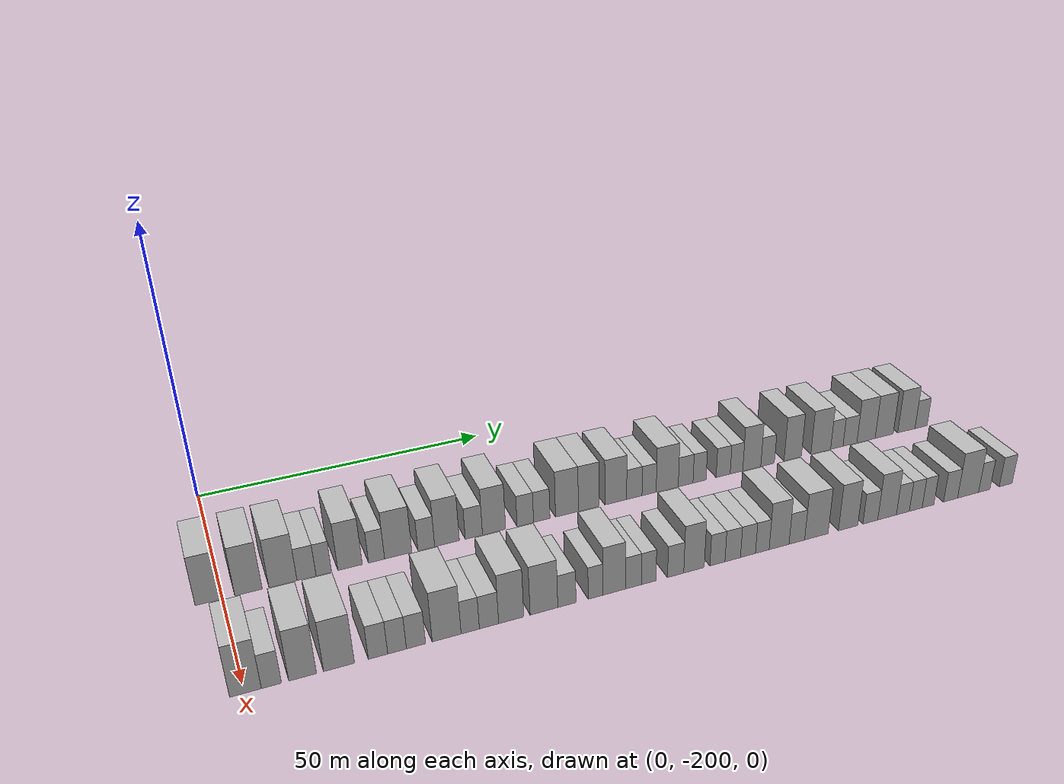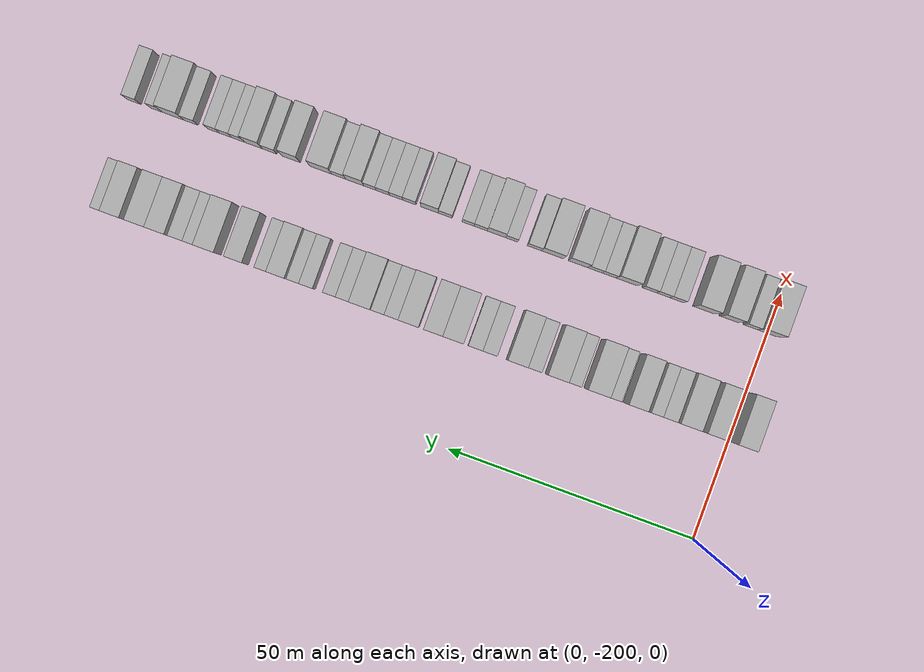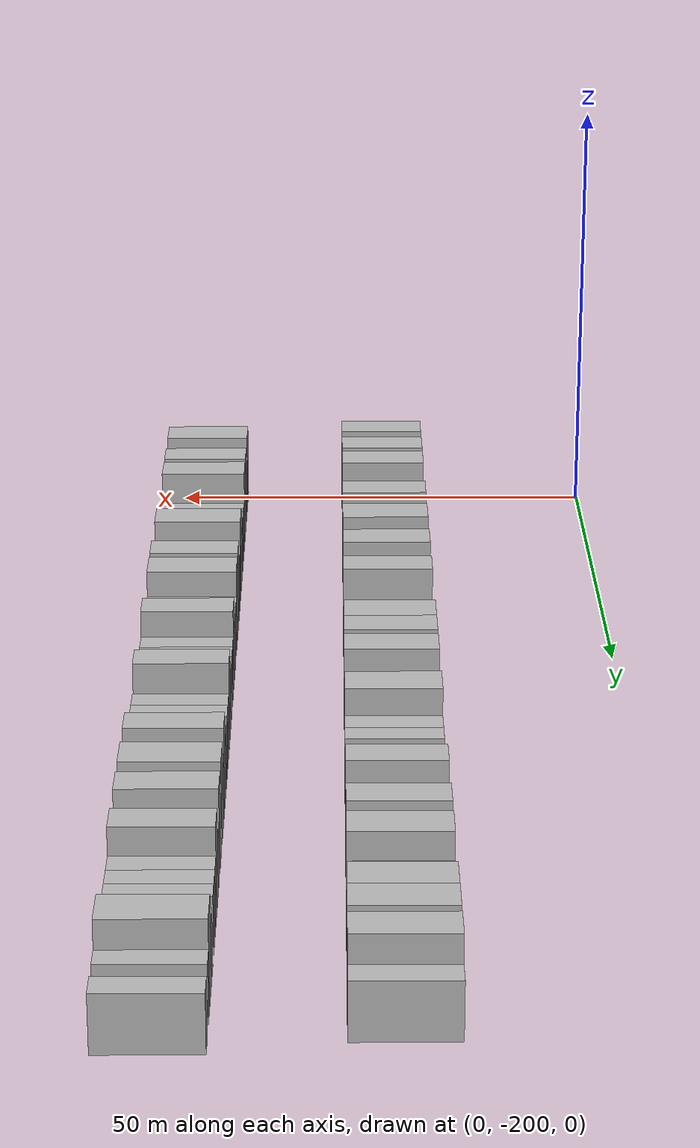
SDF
<sdf version="1.6">
 <world name="default">
  <model name="building_1">
   <static>1</static>
   <pose>25.0000 -202.0704 0 0.000000 0.000000 0.000000</pose>
   <link name="link">
    <pose>0 0 4.50 0 0 0</pose>
    <collision name="collision"><geometry><box><size>10.0000 3.8591 9.0000</size></box></geometry></collision>
    <visual name="visual">
     <cast_shadows>0</cast_shadows>
     <geometry><box><size>10.0000 3.8591 9.0000</size></box></geometry>
     <material>
      <script>
       <uri>model://HANNAS_wall/materials/scripts</uri>
       <uri>model://HANNAS_wall/materials/textures</uri>
       <name>vrc/HANNAS_wall</name>
      </script>
     </material>
    </visual>
   </link>
  </model>
  <model name="building_2">
   <static>1</static>
   <pose>25.0000 -196.0770 0 0.000000 0.000000 0.000000</pose>
   <link name="link">
    <pose>0 0 4.50 0 0 0</pose>
    <collision name="collision"><geometry><box><size>10.0000 4.1278 9.0000</size></box></geometry></collision>
    <visual name="visual">
     <cast_shadows>0</cast_shadows>
     <geometry><box><size>10.0000 4.1278 9.0000</size></box></geometry>
     <material>
      <script>
       <uri>model://HANNAS_wall/materials/scripts</uri>
       <uri>model://HANNAS_wall/materials/textures</uri>
       <name>vrc/HANNAS_wall</name>
      </script>
     </material>
    </visual>
   </link>
  </model>
  <model name="building_3">
   <static>1</static>
   <pose>25.0000 -190.8556 0 0.000000 0.000000 0.000000</pose>
   <link name="link">
    <pose>0 0 4.50 0 0 0</pose>
    <collision name="collision"><geometry><box><size>10.0000 4.3151 9.0000</size></box></geometry></collision>
    <visual name="visual">
     <cast_shadows>0</cast_shadows>
     <geometry><box><size>10.0000 4.3151 9.0000</size></box></geometry>
     <material>
      <script>
       <uri>model://HANNAS_wall/materials/scripts</uri>
       <uri>model://HANNAS_wall/materials/textures</uri>
       <name>vrc/HANNAS_wall</name>
      </script>
     </material>
    </visual>
   </link>
  </model>
  <model name="building_4">
   <static>1</static>
   <pose>25.0000 -187.2225 0 0.000000 0.000000 0.000000</pose>
   <link name="link">
    <pose>0 0 3.00 0 0 0</pose>
    <collision name="collision"><geometry><box><size>10.0000 2.9510 6.0000</size></box></geometry></collision>
    <visual name="visual">
     <cast_shadows>0</cast_shadows>
     <geometry><box><size>10.0000 2.9510 6.0000</size></box></geometry>
     <material>
      <script>
       <uri>model://HANNAS_wall/materials/scripts</uri>
       <uri>model://HANNAS_wall/materials/textures</uri>
       <name>vrc/HANNAS_wall</name>
      </script>
     </material>
    </visual>
   </link>
  </model>
  <model name="building_5">
   <static>1</static>
   <pose>25.0000 -184.5320 0 0.000000 0.000000 0.000000</pose>
   <link name="link">
    <pose>0 0 3.00 0 0 0</pose>
    <collision name="collision"><geometry><box><size>10.0000 2.4300 6.0000</size></box></geometry></collision>
    <visual name="visual">
     <cast_shadows>0</cast_shadows>
     <geometry><box><size>10.0000 2.4300 6.0000</size></box></geometry>
     <material>
      <script>
       <uri>model://HANNAS_wall/materials/scripts</uri>
       <uri>model://HANNAS_wall/materials/textures</uri>
       <name>vrc/HANNAS_wall</name>
      </script>
     </material>
    </visual>
   </link>
  </model>
  <model name="building_6">
   <static>1</static>
   <pose>25.0000 -180.3753 0 0.000000 0.000000 0.000000</pose>
   <link name="link">
    <pose>0 0 4.50 0 0 0</pose>
    <collision name="collision"><geometry><box><size>10.0000 3.8834 9.0000</size></box></geometry></collision>
    <visual name="visual">
     <cast_shadows>0</cast_shadows>
     <geometry><box><size>10.0000 3.8834 9.0000</size></box></geometry>
     <material>
      <script>
       <uri>model://HANNAS_wall/materials/scripts</uri>
       <uri>model://HANNAS_wall/materials/textures</uri>
       <name>vrc/HANNAS_wall</name>
      </script>
     </material>
    </visual>
   </link>
  </model>
  <model name="building_7">
   <static>1</static>
   <pose>25.0000 -176.1350 0 0.000000 0.000000 0.000000</pose>
   <link name="link">
    <pose>0 0 3.00 0 0 0</pose>
    <collision name="collision"><geometry><box><size>10.0000 2.5972 6.0000</size></box></geometry></collision>
    <visual name="visual">
     <cast_shadows>0</cast_shadows>
     <geometry><box><size>10.0000 2.5972 6.0000</size></box></geometry>
     <material>
      <script>
       <uri>model://HANNAS_wall/materials/scripts</uri>
       <uri>model://HANNAS_wall/materials/textures</uri>
       <name>vrc/HANNAS_wall</name>
      </script>
     </material>
    </visual>
   </link>
  </model>
  <model name="building_8">
   <static>1</static>
   <pose>25.0000 -172.6063 0 0.000000 0.000000 0.000000</pose>
   <link name="link">
    <pose>0 0 4.50 0 0 0</pose>
    <collision name="collision"><geometry><box><size>10.0000 4.4603 9.0000</size></box></geometry></collision>
    <visual name="visual">
     <cast_shadows>0</cast_shadows>
     <geometry><box><size>10.0000 4.4603 9.0000</size></box></geometry>
     <material>
      <script>
       <uri>model://HANNAS_wall/materials/scripts</uri>
       <uri>model://HANNAS_wall/materials/textures</uri>
       <name>vrc/HANNAS_wall</name>
      </script>
     </material>
    </visual>
   </link>
  </model>
  <model name="building_9">
   <static>1</static>
   <pose>25.0000 -167.9846 0 0.000000 0.000000 0.000000</pose>
   <link name="link">
    <pose>0 0 3.00 0 0 0</pose>
    <collision name="collision"><geometry><box><size>10.0000 2.7832 6.0000</size></box></geometry></collision>
    <visual name="visual">
     <cast_shadows>0</cast_shadows>
     <geometry><box><size>10.0000 2.7832 6.0000</size></box></geometry>
     <material>
      <script>
       <uri>model://HANNAS_wall/materials/scripts</uri>
       <uri>model://HANNAS_wall/materials/textures</uri>
       <name>vrc/HANNAS_wall</name>
      </script>
     </material>
    </visual>
   </link>
  </model>
  <model name="building_10">
   <static>1</static>
   <pose>25.0000 -164.5169 0 0.000000 0.000000 0.000000</pose>
   <link name="link">
    <pose>0 0 4.50 0 0 0</pose>
    <collision name="collision"><geometry><box><size>10.0000 4.1521 9.0000</size></box></geometry></collision>
    <visual name="visual">
     <cast_shadows>0</cast_shadows>
     <geometry><box><size>10.0000 4.1521 9.0000</size></box></geometry>
     <material>
      <script>
       <uri>model://HANNAS_wall/materials/scripts</uri>
       <uri>model://HANNAS_wall/materials/textures</uri>
       <name>vrc/HANNAS_wall</name>
      </script>
     </material>
    </visual>
   </link>
  </model>
  <model name="building_11">
   <static>1</static>
   <pose>25.0000 -159.9686 0 0.000000 0.000000 0.000000</pose>
   <link name="link">
    <pose>0 0 3.00 0 0 0</pose>
    <collision name="collision"><geometry><box><size>10.0000 2.9445 6.0000</size></box></geometry></collision>
    <visual name="visual">
     <cast_shadows>0</cast_shadows>
     <geometry><box><size>10.0000 2.9445 6.0000</size></box></geometry>
     <material>
      <script>
       <uri>model://HANNAS_wall/materials/scripts</uri>
       <uri>model://HANNAS_wall/materials/textures</uri>
       <name>vrc/HANNAS_wall</name>
      </script>
     </material>
    </visual>
   </link>
  </model>
  <model name="building_12">
   <static>1</static>
   <pose>25.0000 -156.4924 0 0.000000 0.000000 0.000000</pose>
   <link name="link">
    <pose>0 0 4.50 0 0 0</pose>
    <collision name="collision"><geometry><box><size>10.0000 4.0080 9.0000</size></box></geometry></collision>
    <visual name="visual">
     <cast_shadows>0</cast_shadows>
     <geometry><box><size>10.0000 4.0080 9.0000</size></box></geometry>
     <material>
      <script>
       <uri>model://HANNAS_wall/materials/scripts</uri>
       <uri>model://HANNAS_wall/materials/textures</uri>
       <name>vrc/HANNAS_wall</name>
      </script>
     </material>
    </visual>
   </link>
  </model>
  <model name="building_13">
   <static>1</static>
   <pose>25.0000 -151.0378 0 0.000000 0.000000 0.000000</pose>
   <link name="link">
    <pose>0 0 3.00 0 0 0</pose>
    <collision name="collision"><geometry><box><size>10.0000 2.9011 6.0000</size></box></geometry></collision>
    <visual name="visual">
     <cast_shadows>0</cast_shadows>
     <geometry><box><size>10.0000 2.9011 6.0000</size></box></geometry>
     <material>
      <script>
       <uri>model://HANNAS_wall/materials/scripts</uri>
       <uri>model://HANNAS_wall/materials/textures</uri>
       <name>vrc/HANNAS_wall</name>
      </script>
     </material>
    </visual>
   </link>
  </model>
  <model name="building_14">
   <static>1</static>
   <pose>25.0000 -148.1292 0 0.000000 0.000000 0.000000</pose>
   <link name="link">
    <pose>0 0 3.00 0 0 0</pose>
    <collision name="collision"><geometry><box><size>10.0000 2.9161 6.0000</size></box></geometry></collision>
    <visual name="visual">
     <cast_shadows>0</cast_shadows>
     <geometry><box><size>10.0000 2.9161 6.0000</size></box></geometry>
     <material>
      <script>
       <uri>model://HANNAS_wall/materials/scripts</uri>
       <uri>model://HANNAS_wall/materials/textures</uri>
       <name>vrc/HANNAS_wall</name>
      </script>
     </material>
    </visual>
   </link>
  </model>
  <model name="building_15">
   <static>1</static>
   <pose>25.0000 -143.6007 0 0.000000 0.000000 0.000000</pose>
   <link name="link">
    <pose>0 0 4.50 0 0 0</pose>
    <collision name="collision"><geometry><box><size>10.0000 4.1409 9.0000</size></box></geometry></collision>
    <visual name="visual">
     <cast_shadows>0</cast_shadows>
     <geometry><box><size>10.0000 4.1409 9.0000</size></box></geometry>
     <material>
      <script>
       <uri>model://HANNAS_wall/materials/scripts</uri>
       <uri>model://HANNAS_wall/materials/textures</uri>
       <name>vrc/HANNAS_wall</name>
      </script>
     </material>
    </visual>
   </link>
  </model>
  <model name="building_16">
   <static>1</static>
   <pose>25.0000 -139.6149 0 0.000000 0.000000 0.000000</pose>
   <link name="link">
    <pose>0 0 4.50 0 0 0</pose>
    <collision name="collision"><geometry><box><size>10.0000 3.8309 9.0000</size></box></geometry></collision>
    <visual name="visual">
     <cast_shadows>0</cast_shadows>
     <geometry><box><size>10.0000 3.8309 9.0000</size></box></geometry>
     <material>
      <script>
       <uri>model://HANNAS_wall/materials/scripts</uri>
       <uri>model://HANNAS_wall/materials/textures</uri>
       <name>vrc/HANNAS_wall</name>
      </script>
     </material>
    </visual>
   </link>
  </model>
  <model name="building_17">
   <static>1</static>
   <pose>25.0000 -134.6687 0 0.000000 0.000000 0.000000</pose>
   <link name="link">
    <pose>0 0 4.50 0 0 0</pose>
    <collision name="collision"><geometry><box><size>10.0000 4.0614 9.0000</size></box></geometry></collision>
    <visual name="visual">
     <cast_shadows>0</cast_shadows>
     <geometry><box><size>10.0000 4.0614 9.0000</size></box></geometry>
     <material>
      <script>
       <uri>model://HANNAS_wall/materials/scripts</uri>
       <uri>model://HANNAS_wall/materials/textures</uri>
       <name>vrc/HANNAS_wall</name>
      </script>
     </material>
    </visual>
   </link>
  </model>
  <model name="building_18">
   <static>1</static>
   <pose>25.0000 -131.1882 0 0.000000 0.000000 0.000000</pose>
   <link name="link">
    <pose>0 0 3.00 0 0 0</pose>
    <collision name="collision"><geometry><box><size>10.0000 2.8995 6.0000</size></box></geometry></collision>
    <visual name="visual">
     <cast_shadows>0</cast_shadows>
     <geometry><box><size>10.0000 2.8995 6.0000</size></box></geometry>
     <material>
      <script>
       <uri>model://HANNAS_wall/materials/scripts</uri>
       <uri>model://HANNAS_wall/materials/textures</uri>
       <name>vrc/HANNAS_wall</name>
      </script>
     </material>
    </visual>
   </link>
  </model>
  <model name="building_19">
   <static>1</static>
   <pose>25.0000 -128.3904 0 0.000000 0.000000 0.000000</pose>
   <link name="link">
    <pose>0 0 3.00 0 0 0</pose>
    <collision name="collision"><geometry><box><size>10.0000 2.6962 6.0000</size></box></geometry></collision>
    <visual name="visual">
     <cast_shadows>0</cast_shadows>
     <geometry><box><size>10.0000 2.6962 6.0000</size></box></geometry>
     <material>
      <script>
       <uri>model://HANNAS_wall/materials/scripts</uri>
       <uri>model://HANNAS_wall/materials/textures</uri>
       <name>vrc/HANNAS_wall</name>
      </script>
     </material>
    </visual>
   </link>
  </model>
  <model name="building_20">
   <static>1</static>
   <pose>25.0000 -124.9213 0 0.000000 0.000000 0.000000</pose>
   <link name="link">
    <pose>0 0 4.50 0 0 0</pose>
    <collision name="collision"><geometry><box><size>10.0000 4.2421 9.0000</size></box></geometry></collision>
    <visual name="visual">
     <cast_shadows>0</cast_shadows>
     <geometry><box><size>10.0000 4.2421 9.0000</size></box></geometry>
     <material>
      <script>
       <uri>model://HANNAS_wall/materials/scripts</uri>
       <uri>model://HANNAS_wall/materials/textures</uri>
       <name>vrc/HANNAS_wall</name>
      </script>
     </material>
    </visual>
   </link>
  </model>
  <model name="building_21">
   <static>1</static>
   <pose>25.0000 -121.3675 0 0.000000 0.000000 0.000000</pose>
   <link name="link">
    <pose>0 0 3.00 0 0 0</pose>
    <collision name="collision"><geometry><box><size>10.0000 2.8654 6.0000</size></box></geometry></collision>
    <visual name="visual">
     <cast_shadows>0</cast_shadows>
     <geometry><box><size>10.0000 2.8654 6.0000</size></box></geometry>
     <material>
      <script>
       <uri>model://HANNAS_wall/materials/scripts</uri>
       <uri>model://HANNAS_wall/materials/textures</uri>
       <name>vrc/HANNAS_wall</name>
      </script>
     </material>
    </visual>
   </link>
  </model>
  <model name="building_22">
   <static>1</static>
   <pose>25.0000 -118.6558 0 0.000000 0.000000 0.000000</pose>
   <link name="link">
    <pose>0 0 3.00 0 0 0</pose>
    <collision name="collision"><geometry><box><size>10.0000 2.5581 6.0000</size></box></geometry></collision>
    <visual name="visual">
     <cast_shadows>0</cast_shadows>
     <geometry><box><size>10.0000 2.5581 6.0000</size></box></geometry>
     <material>
      <script>
       <uri>model://HANNAS_wall/materials/scripts</uri>
       <uri>model://HANNAS_wall/materials/textures</uri>
       <name>vrc/HANNAS_wall</name>
      </script>
     </material>
    </visual>
   </link>
  </model>
  <model name="building_23">
   <static>1</static>
   <pose>25.0000 -113.9803 0 0.000000 0.000000 0.000000</pose>
   <link name="link">
    <pose>0 0 3.00 0 0 0</pose>
    <collision name="collision"><geometry><box><size>10.0000 2.7928 6.0000</size></box></geometry></collision>
    <visual name="visual">
     <cast_shadows>0</cast_shadows>
     <geometry><box><size>10.0000 2.7928 6.0000</size></box></geometry>
     <material>
      <script>
       <uri>model://HANNAS_wall/materials/scripts</uri>
       <uri>model://HANNAS_wall/materials/textures</uri>
       <name>vrc/HANNAS_wall</name>
      </script>
     </material>
    </visual>
   </link>
  </model>
  <model name="building_24">
   <static>1</static>
   <pose>25.0000 -111.3257 0 0.000000 0.000000 0.000000</pose>
   <link name="link">
    <pose>0 0 3.00 0 0 0</pose>
    <collision name="collision"><geometry><box><size>10.0000 2.5165 6.0000</size></box></geometry></collision>
    <visual name="visual">
     <cast_shadows>0</cast_shadows>
     <geometry><box><size>10.0000 2.5165 6.0000</size></box></geometry>
     <material>
      <script>
       <uri>model://HANNAS_wall/materials/scripts</uri>
       <uri>model://HANNAS_wall/materials/textures</uri>
       <name>vrc/HANNAS_wall</name>
      </script>
     </material>
    </visual>
   </link>
  </model>
  <model name="building_25">
   <static>1</static>
   <pose>25.0000 -108.2355 0 0.000000 0.000000 0.000000</pose>
   <link name="link">
    <pose>0 0 4.50 0 0 0</pose>
    <collision name="collision"><geometry><box><size>10.0000 3.6637 9.0000</size></box></geometry></collision>
    <visual name="visual">
     <cast_shadows>0</cast_shadows>
     <geometry><box><size>10.0000 3.6637 9.0000</size></box></geometry>
     <material>
      <script>
       <uri>model://HANNAS_wall/materials/scripts</uri>
       <uri>model://HANNAS_wall/materials/textures</uri>
       <name>vrc/HANNAS_wall</name>
      </script>
     </material>
    </visual>
   </link>
  </model>
  <model name="building_26">
   <static>1</static>
   <pose>25.0000 -105.0088 0 0.000000 0.000000 0.000000</pose>
   <link name="link">
    <pose>0 0 3.00 0 0 0</pose>
    <collision name="collision"><geometry><box><size>10.0000 2.7897 6.0000</size></box></geometry></collision>
    <visual name="visual">
     <cast_shadows>0</cast_shadows>
     <geometry><box><size>10.0000 2.7897 6.0000</size></box></geometry>
     <material>
      <script>
       <uri>model://HANNAS_wall/materials/scripts</uri>
       <uri>model://HANNAS_wall/materials/textures</uri>
       <name>vrc/HANNAS_wall</name>
      </script>
     </material>
    </visual>
   </link>
  </model>
  <model name="building_27">
   <static>1</static>
   <pose>25.0000 -99.8096 0 0.000000 0.000000 0.000000</pose>
   <link name="link">
    <pose>0 0 4.50 0 0 0</pose>
    <collision name="collision"><geometry><box><size>10.0000 3.6088 9.0000</size></box></geometry></collision>
    <visual name="visual">
     <cast_shadows>0</cast_shadows>
     <geometry><box><size>10.0000 3.6088 9.0000</size></box></geometry>
     <material>
      <script>
       <uri>model://HANNAS_wall/materials/scripts</uri>
       <uri>model://HANNAS_wall/materials/textures</uri>
       <name>vrc/HANNAS_wall</name>
      </script>
     </material>
    </visual>
   </link>
  </model>
  <model name="building_28">
   <static>1</static>
   <pose>25.0000 -93.9112 0 0.000000 0.000000 0.000000</pose>
   <link name="link">
    <pose>0 0 4.50 0 0 0</pose>
    <collision name="collision"><geometry><box><size>10.0000 4.1880 9.0000</size></box></geometry></collision>
    <visual name="visual">
     <cast_shadows>0</cast_shadows>
     <geometry><box><size>10.0000 4.1880 9.0000</size></box></geometry>
     <material>
      <script>
       <uri>model://HANNAS_wall/materials/scripts</uri>
       <uri>model://HANNAS_wall/materials/textures</uri>
       <name>vrc/HANNAS_wall</name>
      </script>
     </material>
    </visual>
   </link>
  </model>
  <model name="building_29">
   <static>1</static>
   <pose>25.0000 -90.4857 0 0.000000 0.000000 0.000000</pose>
   <link name="link">
    <pose>0 0 3.00 0 0 0</pose>
    <collision name="collision"><geometry><box><size>10.0000 2.6630 6.0000</size></box></geometry></collision>
    <visual name="visual">
     <cast_shadows>0</cast_shadows>
     <geometry><box><size>10.0000 2.6630 6.0000</size></box></geometry>
     <material>
      <script>
       <uri>model://HANNAS_wall/materials/scripts</uri>
       <uri>model://HANNAS_wall/materials/textures</uri>
       <name>vrc/HANNAS_wall</name>
      </script>
     </material>
    </visual>
   </link>
  </model>
  <model name="building_30">
   <static>1</static>
   <pose>25.0000 -87.6569 0 0.000000 0.000000 0.000000</pose>
   <link name="link">
    <pose>0 0 3.00 0 0 0</pose>
    <collision name="collision"><geometry><box><size>10.0000 2.9945 6.0000</size></box></geometry></collision>
    <visual name="visual">
     <cast_shadows>0</cast_shadows>
     <geometry><box><size>10.0000 2.9945 6.0000</size></box></geometry>
     <material>
      <script>
       <uri>model://HANNAS_wall/materials/scripts</uri>
       <uri>model://HANNAS_wall/materials/textures</uri>
       <name>vrc/HANNAS_wall</name>
      </script>
     </material>
    </visual>
   </link>
  </model>
  <model name="building_31">
   <static>1</static>
   <pose>25.0000 -84.1616 0 0.000000 0.000000 0.000000</pose>
   <link name="link">
    <pose>0 0 4.50 0 0 0</pose>
    <collision name="collision"><geometry><box><size>10.0000 3.9961 9.0000</size></box></geometry></collision>
    <visual name="visual">
     <cast_shadows>0</cast_shadows>
     <geometry><box><size>10.0000 3.9961 9.0000</size></box></geometry>
     <material>
      <script>
       <uri>model://HANNAS_wall/materials/scripts</uri>
       <uri>model://HANNAS_wall/materials/textures</uri>
       <name>vrc/HANNAS_wall</name>
      </script>
     </material>
    </visual>
   </link>
  </model>
  <model name="building_32">
   <static>1</static>
   <pose>25.0000 -80.1610 0 0.000000 0.000000 0.000000</pose>
   <link name="link">
    <pose>0 0 4.50 0 0 0</pose>
    <collision name="collision"><geometry><box><size>10.0000 4.0050 9.0000</size></box></geometry></collision>
    <visual name="visual">
     <cast_shadows>0</cast_shadows>
     <geometry><box><size>10.0000 4.0050 9.0000</size></box></geometry>
     <material>
      <script>
       <uri>model://HANNAS_wall/materials/scripts</uri>
       <uri>model://HANNAS_wall/materials/textures</uri>
       <name>vrc/HANNAS_wall</name>
      </script>
     </material>
    </visual>
   </link>
  </model>
  <model name="building_33">
   <static>1</static>
   <pose>25.0000 -75.2161 0 0.000000 0.000000 0.000000</pose>
   <link name="link">
    <pose>0 0 4.50 0 0 0</pose>
    <collision name="collision"><geometry><box><size>10.0000 3.8848 9.0000</size></box></geometry></collision>
    <visual name="visual">
     <cast_shadows>0</cast_shadows>
     <geometry><box><size>10.0000 3.8848 9.0000</size></box></geometry>
     <material>
      <script>
       <uri>model://HANNAS_wall/materials/scripts</uri>
       <uri>model://HANNAS_wall/materials/textures</uri>
       <name>vrc/HANNAS_wall</name>
      </script>
     </material>
    </visual>
   </link>
  </model>
  <model name="building_34">
   <static>1</static>
   <pose>25.0000 -71.9064 0 0.000000 0.000000 0.000000</pose>
   <link name="link">
    <pose>0 0 3.00 0 0 0</pose>
    <collision name="collision"><geometry><box><size>10.0000 2.7346 6.0000</size></box></geometry></collision>
    <visual name="visual">
     <cast_shadows>0</cast_shadows>
     <geometry><box><size>10.0000 2.7346 6.0000</size></box></geometry>
     <material>
      <script>
       <uri>model://HANNAS_wall/materials/scripts</uri>
       <uri>model://HANNAS_wall/materials/textures</uri>
       <name>vrc/HANNAS_wall</name>
      </script>
     </material>
    </visual>
   </link>
  </model>
  <model name="building_105">
   <static>1</static>
   <pose>47.0000 -199.8532 0 0.000000 0.000000 0.000000</pose>
   <link name="link">
    <pose>0 0 4.50 0 0 0</pose>
    <collision name="collision"><geometry><box><size>10.0000 4.2937 9.0000</size></box></geometry></collision>
    <visual name="visual">
     <cast_shadows>0</cast_shadows>
     <geometry><box><size>10.0000 4.2937 9.0000</size></box></geometry>
     <material>
      <script>
       <uri>model://HANNAS_wall/materials/scripts</uri>
       <uri>model://HANNAS_wall/materials/textures</uri>
       <name>vrc/HANNAS_wall</name>
      </script>
     </material>
    </visual>
   </link>
  </model>
  <model name="building_106">
   <static>1</static>
   <pose>47.0000 -196.3272 0 0.000000 0.000000 0.000000</pose>
   <link name="link">
    <pose>0 0 3.00 0 0 0</pose>
    <collision name="collision"><geometry><box><size>10.0000 2.7583 6.0000</size></box></geometry></collision>
    <visual name="visual">
     <cast_shadows>0</cast_shadows>
     <geometry><box><size>10.0000 2.7583 6.0000</size></box></geometry>
     <material>
      <script>
       <uri>model://HANNAS_wall/materials/scripts</uri>
       <uri>model://HANNAS_wall/materials/textures</uri>
       <name>vrc/HANNAS_wall</name>
      </script>
     </material>
    </visual>
   </link>
  </model>
  <model name="building_107">
   <static>1</static>
   <pose>47.0000 -192.0185 0 0.000000 0.000000 0.000000</pose>
   <link name="link">
    <pose>0 0 4.50 0 0 0</pose>
    <collision name="collision"><geometry><box><size>10.0000 3.8591 9.0000</size></box></geometry></collision>
    <visual name="visual">
     <cast_shadows>0</cast_shadows>
     <geometry><box><size>10.0000 3.8591 9.0000</size></box></geometry>
     <material>
      <script>
       <uri>model://HANNAS_wall/materials/scripts</uri>
       <uri>model://HANNAS_wall/materials/textures</uri>
       <name>vrc/HANNAS_wall</name>
      </script>
     </material>
    </visual>
   </link>
  </model>
  <model name="building_108">
   <static>1</static>
   <pose>47.0000 -186.8959 0 0.000000 0.000000 0.000000</pose>
   <link name="link">
    <pose>0 0 4.50 0 0 0</pose>
    <collision name="collision"><geometry><box><size>10.0000 4.3861 9.0000</size></box></geometry></collision>
    <visual name="visual">
     <cast_shadows>0</cast_shadows>
     <geometry><box><size>10.0000 4.3861 9.0000</size></box></geometry>
     <material>
      <script>
       <uri>model://HANNAS_wall/materials/scripts</uri>
       <uri>model://HANNAS_wall/materials/textures</uri>
       <name>vrc/HANNAS_wall</name>
      </script>
     </material>
    </visual>
   </link>
  </model>
  <model name="building_109">
   <static>1</static>
   <pose>47.0000 -181.2958 0 0.000000 0.000000 0.000000</pose>
   <link name="link">
    <pose>0 0 3.00 0 0 0</pose>
    <collision name="collision"><geometry><box><size>10.0000 2.8139 6.0000</size></box></geometry></collision>
    <visual name="visual">
     <cast_shadows>0</cast_shadows>
     <geometry><box><size>10.0000 2.8139 6.0000</size></box></geometry>
     <material>
      <script>
       <uri>model://HANNAS_wall/materials/scripts</uri>
       <uri>model://HANNAS_wall/materials/textures</uri>
       <name>vrc/HANNAS_wall</name>
      </script>
     </material>
    </visual>
   </link>
  </model>
  <model name="building_110">
   <static>1</static>
   <pose>47.0000 -178.5157 0 0.000000 0.000000 0.000000</pose>
   <link name="link">
    <pose>0 0 3.00 0 0 0</pose>
    <collision name="collision"><geometry><box><size>10.0000 2.7463 6.0000</size></box></geometry></collision>
    <visual name="visual">
     <cast_shadows>0</cast_shadows>
     <geometry><box><size>10.0000 2.7463 6.0000</size></box></geometry>
     <material>
      <script>
       <uri>model://HANNAS_wall/materials/scripts</uri>
       <uri>model://HANNAS_wall/materials/textures</uri>
       <name>vrc/HANNAS_wall</name>
      </script>
     </material>
    </visual>
   </link>
  </model>
  <model name="building_111">
   <static>1</static>
   <pose>47.0000 -175.7218 0 0.000000 0.000000 0.000000</pose>
   <link name="link">
    <pose>0 0 3.00 0 0 0</pose>
    <collision name="collision"><geometry><box><size>10.0000 2.8415 6.0000</size></box></geometry></collision>
    <visual name="visual">
     <cast_shadows>0</cast_shadows>
     <geometry><box><size>10.0000 2.8415 6.0000</size></box></geometry>
     <material>
      <script>
       <uri>model://HANNAS_wall/materials/scripts</uri>
       <uri>model://HANNAS_wall/materials/textures</uri>
       <name>vrc/HANNAS_wall</name>
      </script>
     </material>
    </visual>
   </link>
  </model>
  <model name="building_112">
   <static>1</static>
   <pose>47.0000 -171.1165 0 0.000000 0.000000 0.000000</pose>
   <link name="link">
    <pose>0 0 4.50 0 0 0</pose>
    <collision name="collision"><geometry><box><size>10.0000 4.3691 9.0000</size></box></geometry></collision>
    <visual name="visual">
     <cast_shadows>0</cast_shadows>
     <geometry><box><size>10.0000 4.3691 9.0000</size></box></geometry>
     <material>
      <script>
       <uri>model://HANNAS_wall/materials/scripts</uri>
       <uri>model://HANNAS_wall/materials/textures</uri>
       <name>vrc/HANNAS_wall</name>
      </script>
     </material>
    </visual>
   </link>
  </model>
  <model name="building_113">
   <static>1</static>
   <pose>47.0000 -167.5326 0 0.000000 0.000000 0.000000</pose>
   <link name="link">
    <pose>0 0 3.00 0 0 0</pose>
    <collision name="collision"><geometry><box><size>10.0000 2.7987 6.0000</size></box></geometry></collision>
    <visual name="visual">
     <cast_shadows>0</cast_shadows>
     <geometry><box><size>10.0000 2.7987 6.0000</size></box></geometry>
     <material>
      <script>
       <uri>model://HANNAS_wall/materials/scripts</uri>
       <uri>model://HANNAS_wall/materials/textures</uri>
       <name>vrc/HANNAS_wall</name>
      </script>
     </material>
    </visual>
   </link>
  </model>
  <model name="building_114">
   <static>1</static>
   <pose>47.0000 -164.6391 0 0.000000 0.000000 0.000000</pose>
   <link name="link">
    <pose>0 0 3.00 0 0 0</pose>
    <collision name="collision"><geometry><box><size>10.0000 2.9882 6.0000</size></box></geometry></collision>
    <visual name="visual">
     <cast_shadows>0</cast_shadows>
     <geometry><box><size>10.0000 2.9882 6.0000</size></box></geometry>
     <material>
      <script>
       <uri>model://HANNAS_wall/materials/scripts</uri>
       <uri>model://HANNAS_wall/materials/textures</uri>
       <name>vrc/HANNAS_wall</name>
      </script>
     </material>
    </visual>
   </link>
  </model>
  <model name="building_115">
   <static>1</static>
   <pose>47.0000 -161.1657 0 0.000000 0.000000 0.000000</pose>
   <link name="link">
    <pose>0 0 4.50 0 0 0</pose>
    <collision name="collision"><geometry><box><size>10.0000 3.9587 9.0000</size></box></geometry></collision>
    <visual name="visual">
     <cast_shadows>0</cast_shadows>
     <geometry><box><size>10.0000 3.9587 9.0000</size></box></geometry>
     <material>
      <script>
       <uri>model://HANNAS_wall/materials/scripts</uri>
       <uri>model://HANNAS_wall/materials/textures</uri>
       <name>vrc/HANNAS_wall</name>
      </script>
     </material>
    </visual>
   </link>
  </model>
  <model name="building_116">
   <static>1</static>
   <pose>47.0000 -155.9724 0 0.000000 0.000000 0.000000</pose>
   <link name="link">
    <pose>0 0 4.50 0 0 0</pose>
    <collision name="collision"><geometry><box><size>10.0000 4.4278 9.0000</size></box></geometry></collision>
    <visual name="visual">
     <cast_shadows>0</cast_shadows>
     <geometry><box><size>10.0000 4.4278 9.0000</size></box></geometry>
     <material>
      <script>
       <uri>model://HANNAS_wall/materials/scripts</uri>
       <uri>model://HANNAS_wall/materials/textures</uri>
       <name>vrc/HANNAS_wall</name>
      </script>
     </material>
    </visual>
   </link>
  </model>
  <model name="building_117">
   <static>1</static>
   <pose>47.0000 -152.2785 0 0.000000 0.000000 0.000000</pose>
   <link name="link">
    <pose>0 0 3.00 0 0 0</pose>
    <collision name="collision"><geometry><box><size>10.0000 2.9601 6.0000</size></box></geometry></collision>
    <visual name="visual">
     <cast_shadows>0</cast_shadows>
     <geometry><box><size>10.0000 2.9601 6.0000</size></box></geometry>
     <material>
      <script>
       <uri>model://HANNAS_wall/materials/scripts</uri>
       <uri>model://HANNAS_wall/materials/textures</uri>
       <name>vrc/HANNAS_wall</name>
      </script>
     </material>
    </visual>
   </link>
  </model>
  <model name="building_118">
   <static>1</static>
   <pose>47.0000 -147.5698 0 0.000000 0.000000 0.000000</pose>
   <link name="link">
    <pose>0 0 3.00 0 0 0</pose>
    <collision name="collision"><geometry><box><size>10.0000 2.4574 6.0000</size></box></geometry></collision>
    <visual name="visual">
     <cast_shadows>0</cast_shadows>
     <geometry><box><size>10.0000 2.4574 6.0000</size></box></geometry>
     <material>
      <script>
       <uri>model://HANNAS_wall/materials/scripts</uri>
       <uri>model://HANNAS_wall/materials/textures</uri>
       <name>vrc/HANNAS_wall</name>
      </script>
     </material>
    </visual>
   </link>
  </model>
  <model name="building_119">
   <static>1</static>
   <pose>47.0000 -144.4825 0 0.000000 0.000000 0.000000</pose>
   <link name="link">
    <pose>0 0 4.50 0 0 0</pose>
    <collision name="collision"><geometry><box><size>10.0000 3.7171 9.0000</size></box></geometry></collision>
    <visual name="visual">
     <cast_shadows>0</cast_shadows>
     <geometry><box><size>10.0000 3.7171 9.0000</size></box></geometry>
     <material>
      <script>
       <uri>model://HANNAS_wall/materials/scripts</uri>
       <uri>model://HANNAS_wall/materials/textures</uri>
       <name>vrc/HANNAS_wall</name>
      </script>
     </material>
    </visual>
   </link>
  </model>
  <model name="building_120">
   <static>1</static>
   <pose>47.0000 -141.2554 0 0.000000 0.000000 0.000000</pose>
   <link name="link">
    <pose>0 0 3.00 0 0 0</pose>
    <collision name="collision"><geometry><box><size>10.0000 2.7371 6.0000</size></box></geometry></collision>
    <visual name="visual">
     <cast_shadows>0</cast_shadows>
     <geometry><box><size>10.0000 2.7371 6.0000</size></box></geometry>
     <material>
      <script>
       <uri>model://HANNAS_wall/materials/scripts</uri>
       <uri>model://HANNAS_wall/materials/textures</uri>
       <name>vrc/HANNAS_wall</name>
      </script>
     </material>
    </visual>
   </link>
  </model>
  <model name="building_121">
   <static>1</static>
   <pose>47.0000 -138.6549 0 0.000000 0.000000 0.000000</pose>
   <link name="link">
    <pose>0 0 3.00 0 0 0</pose>
    <collision name="collision"><geometry><box><size>10.0000 2.4640 6.0000</size></box></geometry></collision>
    <visual name="visual">
     <cast_shadows>0</cast_shadows>
     <geometry><box><size>10.0000 2.4640 6.0000</size></box></geometry>
     <material>
      <script>
       <uri>model://HANNAS_wall/materials/scripts</uri>
       <uri>model://HANNAS_wall/materials/textures</uri>
       <name>vrc/HANNAS_wall</name>
      </script>
     </material>
    </visual>
   </link>
  </model>
  <model name="building_122">
   <static>1</static>
   <pose>47.0000 -134.0120 0 0.000000 0.000000 0.000000</pose>
   <link name="link">
    <pose>0 0 3.00 0 0 0</pose>
    <collision name="collision"><geometry><box><size>10.0000 2.8217 6.0000</size></box></geometry></collision>
    <visual name="visual">
     <cast_shadows>0</cast_shadows>
     <geometry><box><size>10.0000 2.8217 6.0000</size></box></geometry>
     <material>
      <script>
       <uri>model://HANNAS_wall/materials/scripts</uri>
       <uri>model://HANNAS_wall/materials/textures</uri>
       <name>vrc/HANNAS_wall</name>
      </script>
     </material>
    </visual>
   </link>
  </model>
  <model name="building_123">
   <static>1</static>
   <pose>47.0000 -130.7951 0 0.000000 0.000000 0.000000</pose>
   <link name="link">
    <pose>0 0 4.50 0 0 0</pose>
    <collision name="collision"><geometry><box><size>10.0000 3.6122 9.0000</size></box></geometry></collision>
    <visual name="visual">
     <cast_shadows>0</cast_shadows>
     <geometry><box><size>10.0000 3.6122 9.0000</size></box></geometry>
     <material>
      <script>
       <uri>model://HANNAS_wall/materials/scripts</uri>
       <uri>model://HANNAS_wall/materials/textures</uri>
       <name>vrc/HANNAS_wall</name>
      </script>
     </material>
    </visual>
   </link>
  </model>
  <model name="building_124">
   <static>1</static>
   <pose>47.0000 -126.6458 0 0.000000 0.000000 0.000000</pose>
   <link name="link">
    <pose>0 0 3.00 0 0 0</pose>
    <collision name="collision"><geometry><box><size>10.0000 2.6865 6.0000</size></box></geometry></collision>
    <visual name="visual">
     <cast_shadows>0</cast_shadows>
     <geometry><box><size>10.0000 2.6865 6.0000</size></box></geometry>
     <material>
      <script>
       <uri>model://HANNAS_wall/materials/scripts</uri>
       <uri>model://HANNAS_wall/materials/textures</uri>
       <name>vrc/HANNAS_wall</name>
      </script>
     </material>
    </visual>
   </link>
  </model>
  <model name="building_125">
   <static>1</static>
   <pose>47.0000 -123.9045 0 0.000000 0.000000 0.000000</pose>
   <link name="link">
    <pose>0 0 3.00 0 0 0</pose>
    <collision name="collision"><geometry><box><size>10.0000 2.7962 6.0000</size></box></geometry></collision>
    <visual name="visual">
     <cast_shadows>0</cast_shadows>
     <geometry><box><size>10.0000 2.7962 6.0000</size></box></geometry>
     <material>
      <script>
       <uri>model://HANNAS_wall/materials/scripts</uri>
       <uri>model://HANNAS_wall/materials/textures</uri>
       <name>vrc/HANNAS_wall</name>
      </script>
     </material>
    </visual>
   </link>
  </model>
  <model name="building_126">
   <static>1</static>
   <pose>47.0000 -121.1477 0 0.000000 0.000000 0.000000</pose>
   <link name="link">
    <pose>0 0 3.00 0 0 0</pose>
    <collision name="collision"><geometry><box><size>10.0000 2.7174 6.0000</size></box></geometry></collision>
    <visual name="visual">
     <cast_shadows>0</cast_shadows>
     <geometry><box><size>10.0000 2.7174 6.0000</size></box></geometry>
     <material>
      <script>
       <uri>model://HANNAS_wall/materials/scripts</uri>
       <uri>model://HANNAS_wall/materials/textures</uri>
       <name>vrc/HANNAS_wall</name>
      </script>
     </material>
    </visual>
   </link>
  </model>
  <model name="building_127">
   <static>1</static>
   <pose>47.0000 -118.5317 0 0.000000 0.000000 0.000000</pose>
   <link name="link">
    <pose>0 0 3.00 0 0 0</pose>
    <collision name="collision"><geometry><box><size>10.0000 2.5145 6.0000</size></box></geometry></collision>
    <visual name="visual">
     <cast_shadows>0</cast_shadows>
     <geometry><box><size>10.0000 2.5145 6.0000</size></box></geometry>
     <material>
      <script>
       <uri>model://HANNAS_wall/materials/scripts</uri>
       <uri>model://HANNAS_wall/materials/textures</uri>
       <name>vrc/HANNAS_wall</name>
      </script>
     </material>
    </visual>
   </link>
  </model>
  <model name="building_128">
   <static>1</static>
   <pose>47.0000 -115.4268 0 0.000000 0.000000 0.000000</pose>
   <link name="link">
    <pose>0 0 4.50 0 0 0</pose>
    <collision name="collision"><geometry><box><size>10.0000 3.6953 9.0000</size></box></geometry></collision>
    <visual name="visual">
     <cast_shadows>0</cast_shadows>
     <geometry><box><size>10.0000 3.6953 9.0000</size></box></geometry>
     <material>
      <script>
       <uri>model://HANNAS_wall/materials/scripts</uri>
       <uri>model://HANNAS_wall/materials/textures</uri>
       <name>vrc/HANNAS_wall</name>
      </script>
     </material>
    </visual>
   </link>
  </model>
  <model name="building_129">
   <static>1</static>
   <pose>47.0000 -112.1134 0 0.000000 0.000000 0.000000</pose>
   <link name="link">
    <pose>0 0 3.00 0 0 0</pose>
    <collision name="collision"><geometry><box><size>10.0000 2.9313 6.0000</size></box></geometry></collision>
    <visual name="visual">
     <cast_shadows>0</cast_shadows>
     <geometry><box><size>10.0000 2.9313 6.0000</size></box></geometry>
     <material>
      <script>
       <uri>model://HANNAS_wall/materials/scripts</uri>
       <uri>model://HANNAS_wall/materials/textures</uri>
       <name>vrc/HANNAS_wall</name>
      </script>
     </material>
    </visual>
   </link>
  </model>
  <model name="building_130">
   <static>1</static>
   <pose>47.0000 -108.4202 0 0.000000 0.000000 0.000000</pose>
   <link name="link">
    <pose>0 0 4.50 0 0 0</pose>
    <collision name="collision"><geometry><box><size>10.0000 4.4551 9.0000</size></box></geometry></collision>
    <visual name="visual">
     <cast_shadows>0</cast_shadows>
     <geometry><box><size>10.0000 4.4551 9.0000</size></box></geometry>
     <material>
      <script>
       <uri>model://HANNAS_wall/materials/scripts</uri>
       <uri>model://HANNAS_wall/materials/textures</uri>
       <name>vrc/HANNAS_wall</name>
      </script>
     </material>
    </visual>
   </link>
  </model>
  <model name="building_131">
   <static>1</static>
   <pose>47.0000 -102.3162 0 0.000000 0.000000 0.000000</pose>
   <link name="link">
    <pose>0 0 4.50 0 0 0</pose>
    <collision name="collision"><geometry><box><size>10.0000 3.7531 9.0000</size></box></geometry></collision>
    <visual name="visual">
     <cast_shadows>0</cast_shadows>
     <geometry><box><size>10.0000 3.7531 9.0000</size></box></geometry>
     <material>
      <script>
       <uri>model://HANNAS_wall/materials/scripts</uri>
       <uri>model://HANNAS_wall/materials/textures</uri>
       <name>vrc/HANNAS_wall</name>
      </script>
     </material>
    </visual>
   </link>
  </model>
  <model name="building_132">
   <static>1</static>
   <pose>47.0000 -97.9757 0 0.000000 0.000000 0.000000</pose>
   <link name="link">
    <pose>0 0 3.00 0 0 0</pose>
    <collision name="collision"><geometry><box><size>10.0000 2.9277 6.0000</size></box></geometry></collision>
    <visual name="visual">
     <cast_shadows>0</cast_shadows>
     <geometry><box><size>10.0000 2.9277 6.0000</size></box></geometry>
     <material>
      <script>
       <uri>model://HANNAS_wall/materials/scripts</uri>
       <uri>model://HANNAS_wall/materials/textures</uri>
       <name>vrc/HANNAS_wall</name>
      </script>
     </material>
    </visual>
   </link>
  </model>
  <model name="building_133">
   <static>1</static>
   <pose>47.0000 -94.6534 0 0.000000 0.000000 0.000000</pose>
   <link name="link">
    <pose>0 0 4.50 0 0 0</pose>
    <collision name="collision"><geometry><box><size>10.0000 3.7169 9.0000</size></box></geometry></collision>
    <visual name="visual">
     <cast_shadows>0</cast_shadows>
     <geometry><box><size>10.0000 3.7169 9.0000</size></box></geometry>
     <material>
      <script>
       <uri>model://HANNAS_wall/materials/scripts</uri>
       <uri>model://HANNAS_wall/materials/textures</uri>
       <name>vrc/HANNAS_wall</name>
      </script>
     </material>
    </visual>
   </link>
  </model>
  <model name="building_134">
   <static>1</static>
   <pose>47.0000 -91.4901 0 0.000000 0.000000 0.000000</pose>
   <link name="link">
    <pose>0 0 3.00 0 0 0</pose>
    <collision name="collision"><geometry><box><size>10.0000 2.6098 6.0000</size></box></geometry></collision>
    <visual name="visual">
     <cast_shadows>0</cast_shadows>
     <geometry><box><size>10.0000 2.6098 6.0000</size></box></geometry>
     <material>
      <script>
       <uri>model://HANNAS_wall/materials/scripts</uri>
       <uri>model://HANNAS_wall/materials/textures</uri>
       <name>vrc/HANNAS_wall</name>
      </script>
     </material>
    </visual>
   </link>
  </model>
  <model name="building_135">
   <static>1</static>
   <pose>47.0000 -88.8804 0 0.000000 0.000000 0.000000</pose>
   <link name="link">
    <pose>0 0 3.00 0 0 0</pose>
    <collision name="collision"><geometry><box><size>10.0000 2.6097 6.0000</size></box></geometry></collision>
    <visual name="visual">
     <cast_shadows>0</cast_shadows>
     <geometry><box><size>10.0000 2.6097 6.0000</size></box></geometry>
     <material>
      <script>
       <uri>model://HANNAS_wall/materials/scripts</uri>
       <uri>model://HANNAS_wall/materials/textures</uri>
       <name>vrc/HANNAS_wall</name>
      </script>
     </material>
    </visual>
   </link>
  </model>
  <model name="building_136">
   <static>1</static>
   <pose>47.0000 -86.3729 0 0.000000 0.000000 0.000000</pose>
   <link name="link">
    <pose>0 0 3.00 0 0 0</pose>
    <collision name="collision"><geometry><box><size>10.0000 2.4053 6.0000</size></box></geometry></collision>
    <visual name="visual">
     <cast_shadows>0</cast_shadows>
     <geometry><box><size>10.0000 2.4053 6.0000</size></box></geometry>
     <material>
      <script>
       <uri>model://HANNAS_wall/materials/scripts</uri>
       <uri>model://HANNAS_wall/materials/textures</uri>
       <name>vrc/HANNAS_wall</name>
      </script>
     </material>
    </visual>
   </link>
  </model>
  <model name="building_137">
   <static>1</static>
   <pose>47.0000 -81.7158 0 0.000000 0.000000 0.000000</pose>
   <link name="link">
    <pose>0 0 3.00 0 0 0</pose>
    <collision name="collision"><geometry><box><size>10.0000 2.9089 6.0000</size></box></geometry></collision>
    <visual name="visual">
     <cast_shadows>0</cast_shadows>
     <geometry><box><size>10.0000 2.9089 6.0000</size></box></geometry>
     <material>
      <script>
       <uri>model://HANNAS_wall/materials/scripts</uri>
       <uri>model://HANNAS_wall/materials/textures</uri>
       <name>vrc/HANNAS_wall</name>
      </script>
     </material>
    </visual>
   </link>
  </model>
  <model name="building_138">
   <static>1</static>
   <pose>47.0000 -78.0495 0 0.000000 0.000000 0.000000</pose>
   <link name="link">
    <pose>0 0 4.50 0 0 0</pose>
    <collision name="collision"><geometry><box><size>10.0000 4.4237 9.0000</size></box></geometry></collision>
    <visual name="visual">
     <cast_shadows>0</cast_shadows>
     <geometry><box><size>10.0000 4.4237 9.0000</size></box></geometry>
     <material>
      <script>
       <uri>model://HANNAS_wall/materials/scripts</uri>
       <uri>model://HANNAS_wall/materials/textures</uri>
       <name>vrc/HANNAS_wall</name>
      </script>
     </material>
    </visual>
   </link>
  </model>
  <model name="building_139">
   <static>1</static>
   <pose>47.0000 -74.6183 0 0.000000 0.000000 0.000000</pose>
   <link name="link">
    <pose>0 0 3.00 0 0 0</pose>
    <collision name="collision"><geometry><box><size>10.0000 2.4389 6.0000</size></box></geometry></collision>
    <visual name="visual">
     <cast_shadows>0</cast_shadows>
     <geometry><box><size>10.0000 2.4389 6.0000</size></box></geometry>
     <material>
      <script>
       <uri>model://HANNAS_wall/materials/scripts</uri>
       <uri>model://HANNAS_wall/materials/textures</uri>
       <name>vrc/HANNAS_wall</name>
      </script>
     </material>
    </visual>
   </link>
  </model>
  <model name="building_140">
   <static>1</static>
   <pose>47.0000 -70.0106 0 0.000000 0.000000 0.000000</pose>
   <link name="link">
    <pose>0 0 3.00 0 0 0</pose>
    <collision name="collision"><geometry><box><size>10.0000 2.7764 6.0000</size></box></geometry></collision>
    <visual name="visual">
     <cast_shadows>0</cast_shadows>
     <geometry><box><size>10.0000 2.7764 6.0000</size></box></geometry>
     <material>
      <script>
       <uri>model://HANNAS_wall/materials/scripts</uri>
       <uri>model://HANNAS_wall/materials/textures</uri>
       <name>vrc/HANNAS_wall</name>
      </script>
     </material>
    </visual>
   </link>
  </model>
 </world>
</sdf>
